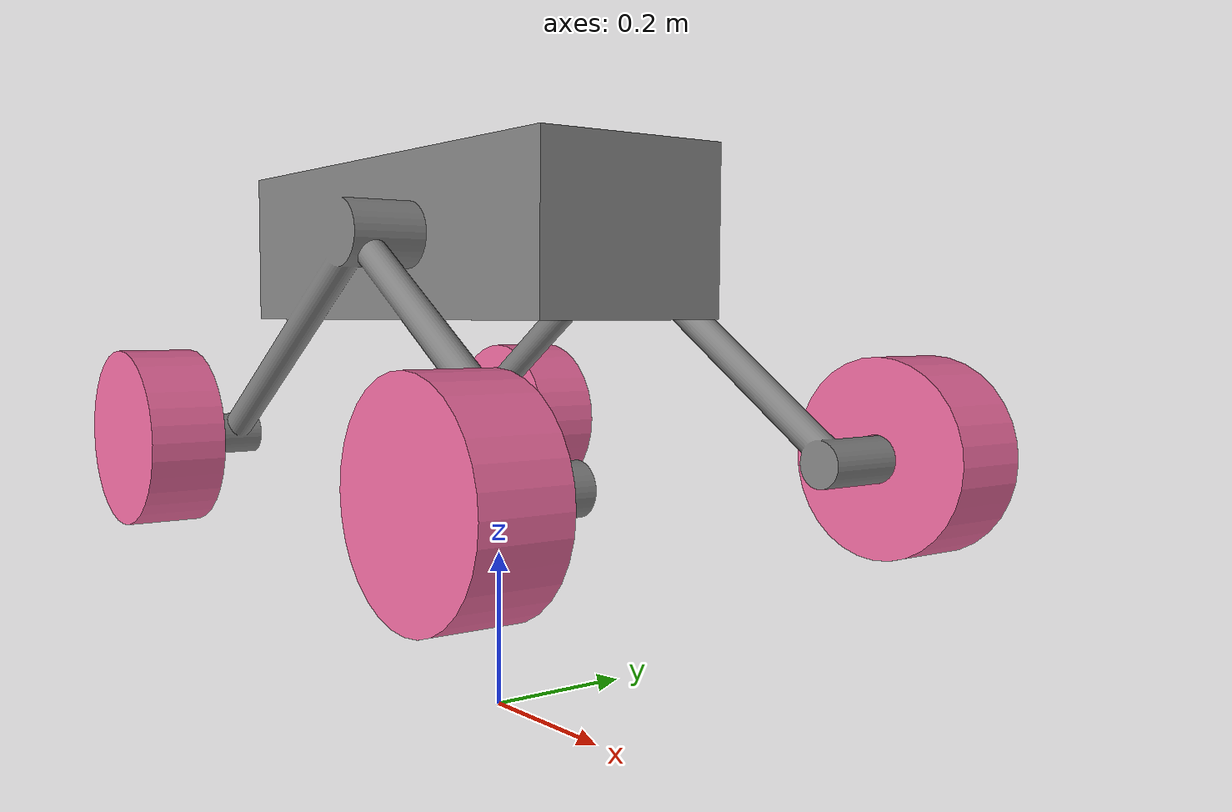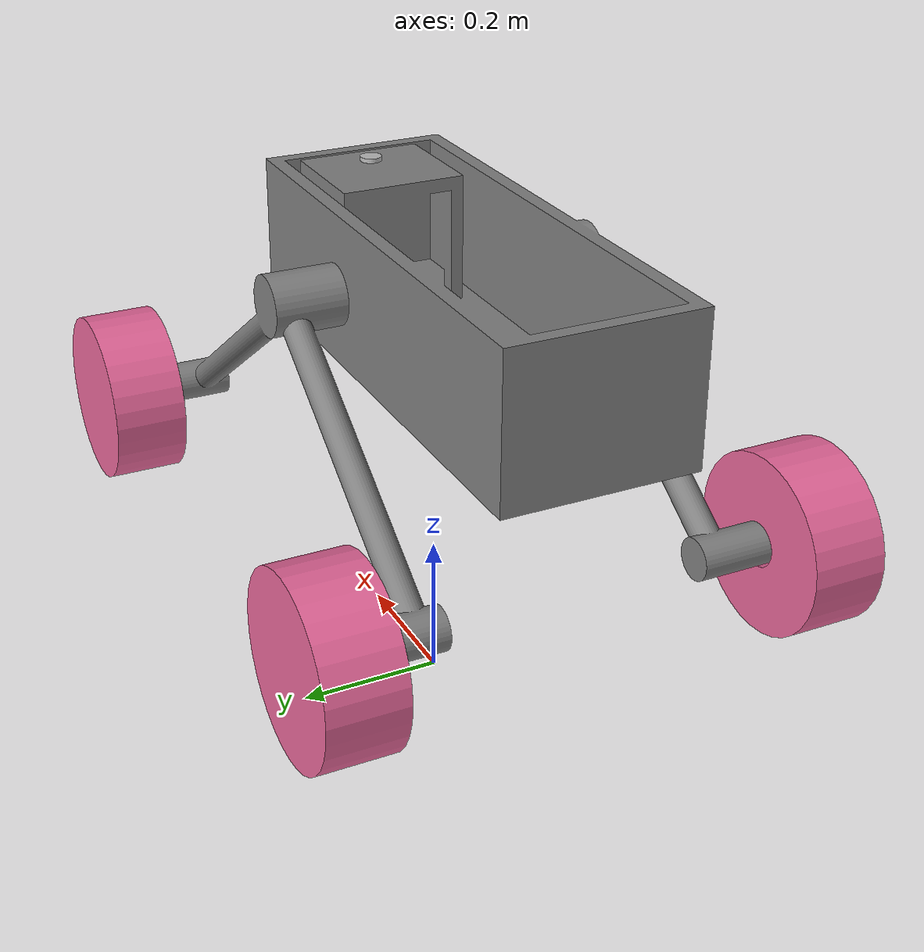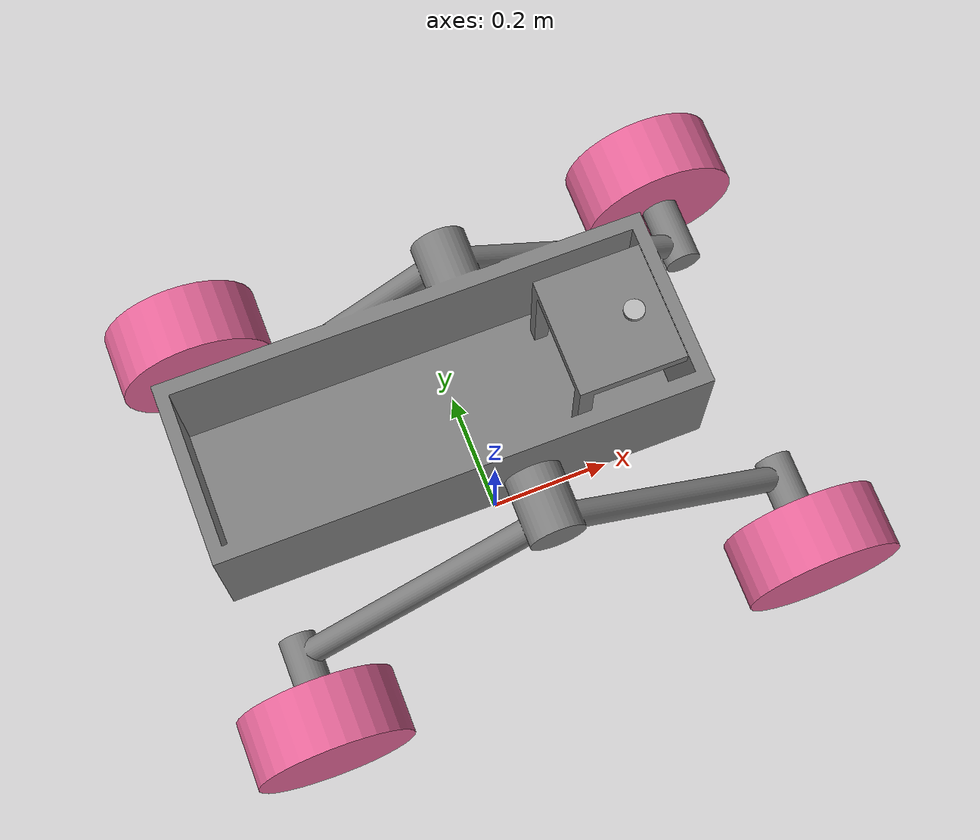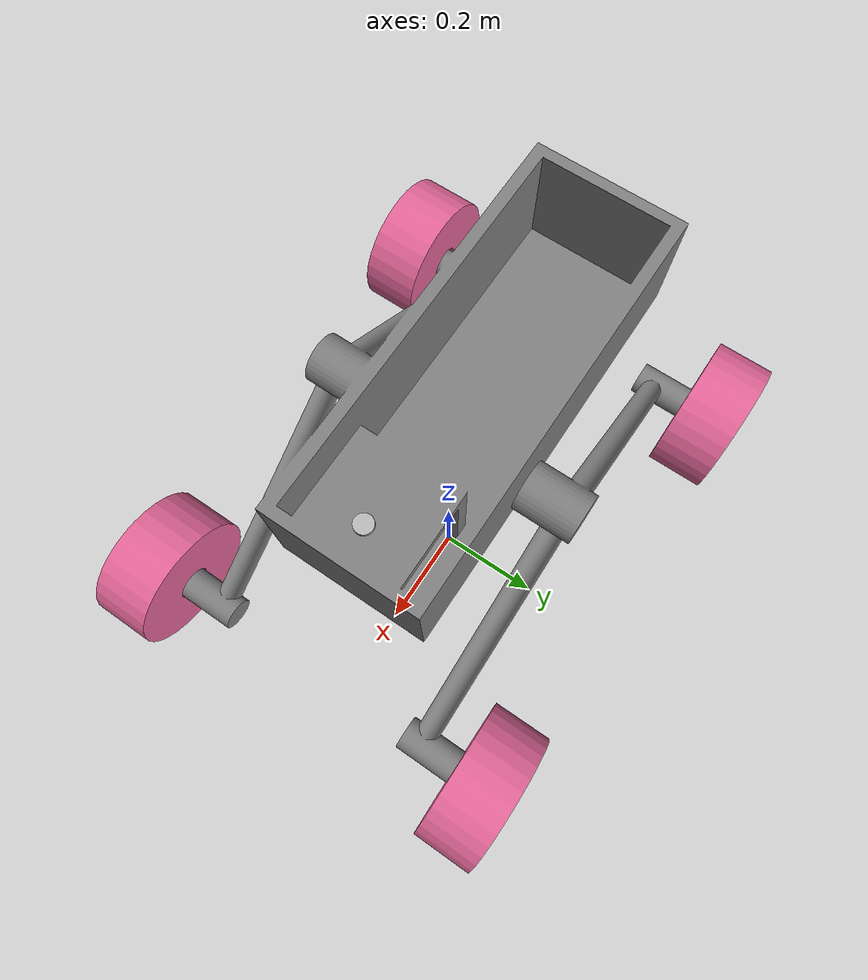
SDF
<sdf version='1.7'>
  <model name='rover'>
    <pose>0 0 0.5 0 0 0</pose>
    <link name='base_link'>
      <inertial>
        <pose>-0.200442 -0.000145 0.03343 0 -0 0</pose>
        <mass>28.7484</mass>
        <inertia>
          <ixx>0.0489809</ixx>
          <ixy>-5.84646e-06</ixy>
          <ixz>-0.00696749</ixz>
          <iyy>0.259969</iyy>
          <iyz>-2.53149e-06</iyz>
          <izz>0.268329</izz>
        </inertia>
      </inertial>
      <collision name='base_link_collision'>
        <pose>0 0 0 0 -0 0</pose>
        <geometry>
          <mesh>
            <scale>1 1 1</scale>
            <uri>meshes/base_link.stl</uri>
          </mesh>
        </geometry>
      </collision>
      <visual name='base_link_visual'>
        <pose>0 0 0 0 -0 0</pose>
        <geometry>
          <mesh>
            <scale>1 1 1</scale>
            <uri>meshes/base_link.stl</uri>
          </mesh>
        </geometry>
        <material>
          <ambient>0.2 0.2 0.2 1</ambient>
          <diffuse>0.5 0.5 0.5 1</diffuse>
          <specular>0.8 0.8 0.8 1</specular>
        </material>
      </visual>
      <visual name='base_link_fixed_joint_lump__lidar_visual_1'>
        <pose>0.2 0 0.20682 0 -0 0</pose>
        <geometry>
          <mesh>
            <scale>1 1 1</scale>
            <uri>meshes/lidar.stl</uri>
          </mesh>
        </geometry>
      </visual>
      <sensor name='laser' type='ray'>
        <visualize>1</visualize>
        <update_rate>10</update_rate>
        <ray>
          <scan>
            <horizontal>
              <samples>1024</samples>
              <resolution>1</resolution>
              <min_angle>-3.14159</min_angle>
              <max_angle>3.14159</max_angle>
            </horizontal>
          </scan>
          <range>
            <min>0.1</min>
            <max>2</max>
            <resolution>0.1</resolution>
          </range>
        </ray>
        <plugin name='gazebo_ros_laser' filename='libgazebo_ros_ray_sensor.so'>
          <ros>
            <namespace>/rover</namespace>
            <remapping>~/out:=scan</remapping>
          </ros>
          <output_type>sensor_msgs/LaserScan</output_type>
          <frame_name>base_link</frame_name>
        </plugin>
        <pose>0.2 0 0.20682 0 -0 0</pose>
      </sensor>
    </link>
    <joint name='left_back_joint' type='revolute'>
      <pose relative_to='base_link'>-0.38139 0.31387 -0.16074 0 -0 0</pose>
      <parent>base_link</parent>
      <child>left_back</child>
      <axis>
        <xyz>0 1 0</xyz>
        <limit>
          <lower>-1e+16</lower>
          <upper>1e+16</upper>
        </limit>
        <dynamics>
          <spring_reference>0</spring_reference>
          <spring_stiffness>0</spring_stiffness>
        </dynamics>
      </axis>
    </joint>
    <link name='left_back'>
      <pose relative_to='left_back_joint'>0 0 0 0 -0 0</pose>
      <inertial>
        <pose>5.3e-05 0.04643 -0.000245 0 -0 0</pose>
        <mass>1.80318</mass>
        <inertia>
          <ixx>0.00841984</ixx>
          <ixy>0</ixy>
          <ixz>0</ixz>
          <iyy>0.0141488</iyy>
          <iyz>0</iyz>
          <izz>0.00843426</izz>
        </inertia>
      </inertial>
      <collision name='left_back_collision'>
        <pose>0 0 0 0 -0 0</pose>
        <geometry>
          <mesh>
            <scale>1 1 1</scale>
            <uri>meshes/left_back.stl</uri>
          </mesh>
        </geometry>
        <surface>
          <friction>
            <ode>
              <mu>0.3</mu>     <!-- lateral friction -->
              <mu2>0.3</mu2>   <!-- longitudinal friction -->
            </ode>
          </friction>
        </surface>
      </collision>
      <visual name='left_back_visual'>
        <pose>0 0 0 0 -0 0</pose>
        <geometry>
          <mesh>
            <scale>1 1 1</scale>
            <uri>meshes/left_back.stl</uri>
          </mesh>
        </geometry>
        <material>
          <ambient>0.5 0.2 0.3 1</ambient>
          <diffuse>0.9 0.4 0.6 1</diffuse>
          <specular>0.2 0.2 0.2 1</specular>
        </material>
      </visual>
    </link>
    <joint name='left_front_joint' type='revolute'>
      <pose relative_to='base_link'>0.38106 0.31837 -0.16074 0 -0 0</pose>
      <parent>base_link</parent>
      <child>left_front</child>
      <axis>
        <xyz>0 1 0</xyz>
        <limit>
          <lower>-1e+16</lower>
          <upper>1e+16</upper>
        </limit>
        <dynamics>
          <spring_reference>0</spring_reference>
          <spring_stiffness>0</spring_stiffness>
        </dynamics>
      </axis>
    </joint>
    <link name='left_front'>
      <pose relative_to='left_front_joint'>0 0 0 0 -0 0</pose>
      <inertial>
        <pose>5.3e-05 0.04643 -0.000245 0 -0 0</pose>
        <mass>1.80318</mass>
        <inertia>
          <ixx>0.0084266</ixx>
          <ixy>0</ixy>
          <ixz>0</ixz>
          <iyy>0.0141488</iyy>
          <iyz>0</iyz>
          <izz>0.0084275</izz>
        </inertia>
      </inertial>
      <collision name='left_front_collision'>
        <pose>0 0 0 0 -0 0</pose>
        <geometry>
          <mesh>
            <scale>1 1 1</scale>
            <uri>meshes/left_front.stl</uri>
          </mesh>
        </geometry>
        <surface>
          <friction>
            <ode>
              <mu>0.3</mu>     <!-- lateral friction -->
              <mu2>0.3</mu2>   <!-- longitudinal friction -->
            </ode>
          </friction>
        </surface>
      </collision>
      <visual name='left_front_visual'>
        <pose>0 0 0 0 -0 0</pose>
        <geometry>
          <mesh>
            <scale>1 1 1</scale>
            <uri>meshes/left_front.stl</uri>
          </mesh>
        </geometry>
        <material>
          <ambient>0.5 0.2 0.3 1</ambient>
          <diffuse>0.9 0.4 0.6 1</diffuse>
          <specular>0.2 0.2 0.2 1</specular>
        </material>
      </visual>
    </link>
    <joint name='right_back_joint' type='revolute'>
      <pose relative_to='base_link'>-0.38139 -0.31387 -0.16074 0 -0 0</pose>
      <parent>base_link</parent>
      <child>right_back</child>
      <axis>
        <xyz>0 1 0</xyz>
        <limit>
          <lower>-1e+16</lower>
          <upper>1e+16</upper>
        </limit>
        <dynamics>
          <spring_reference>0</spring_reference>
          <spring_stiffness>0</spring_stiffness>
        </dynamics>
      </axis>
    </joint>
    <link name='right_back'>
      <pose relative_to='right_back_joint'>0 0 0 0 -0 0</pose>
      <inertial>
        <pose>-5.3e-05 -0.04643 -0.000245 0 -0 0</pose>
        <mass>1.80318</mass>
        <inertia>
          <ixx>0.00841984</ixx>
          <ixy>0</ixy>
          <ixz>0</ixz>
          <iyy>0.0141488</iyy>
          <iyz>0</iyz>
          <izz>0.00843426</izz>
        </inertia>
      </inertial>
      <collision name='right_back_collision'>
        <pose>0 0 0 0 -0 0</pose>
        <geometry>
          <mesh>
            <scale>1 1 1</scale>
            <uri>meshes/right_back.stl</uri>
          </mesh>
        </geometry>
        <surface>
          <friction>
            <ode>
              <mu>0.3</mu>     <!-- lateral friction -->
              <mu2>0.3</mu2>   <!-- longitudinal friction -->
            </ode>
          </friction>
        </surface>
      </collision>
      <visual name='right_back_visual'>
        <pose>0 0 0 0 -0 0</pose>
        <geometry>
          <mesh>
            <scale>1 1 1</scale>
            <uri>meshes/right_back.stl</uri>
          </mesh>
        </geometry>
        <material>
          <ambient>0.5 0.2 0.3 1</ambient>
          <diffuse>0.9 0.4 0.6 1</diffuse>
          <specular>0.2 0.2 0.2 1</specular>
        </material>
      </visual>
    </link>
    <joint name='right_front_joint' type='revolute'>
      <pose relative_to='base_link'>0.38106 -0.31837 -0.16074 0 -0 0</pose>
      <parent>base_link</parent>
      <child>right_front</child>
      <axis>
        <xyz>0 1 0</xyz>
        <limit>
          <lower>-1e+16</lower>
          <upper>1e+16</upper>
        </limit>
        <dynamics>
          <spring_reference>0</spring_reference>
          <spring_stiffness>0</spring_stiffness>
        </dynamics>
      </axis>
    </joint>
    <link name='right_front'>
      <pose relative_to='right_front_joint'>0 0 0 0 -0 0</pose>
      <inertial>
        <pose>-5.3e-05 -0.04643 -0.000245 0 -0 0</pose>
        <mass>1.80318</mass>
        <inertia>
          <ixx>0.00841975</ixx>
          <ixy>0</ixy>
          <ixz>0</ixz>
          <iyy>0.0141488</iyy>
          <iyz>0</iyz>
          <izz>0.00843434</izz>
        </inertia>
      </inertial>
      <collision name='right_front_collision'>
        <pose>0 0 0 0 -0 0</pose>
        <geometry>
          <mesh>
            <scale>1 1 1</scale>
            <uri>meshes/right_front.stl</uri>
          </mesh>
        </geometry>
        <surface>
          <friction>
            <ode>
              <mu>0.3</mu>     <!-- lateral friction -->
              <mu2>0.3</mu2>   <!-- longitudinal friction -->
            </ode>
          </friction>
        </surface>
      </collision>
      <visual name='right_front_visual'>
        <pose>0 0 0 0 -0 0</pose>
        <geometry>
          <mesh>
            <scale>1 1 1</scale>
            <uri>meshes/right_front.stl</uri>
          </mesh>
        </geometry>
        <material>
          <ambient>0.5 0.2 0.3 1</ambient>
          <diffuse>0.9 0.4 0.6 1</diffuse>
          <specular>0.2 0.2 0.2 1</specular>
        </material>
      </visual>
    </link>
    <plugin name='rover_joint_state_publisher' filename='libgazebo_ros_joint_state_publisher.so'>
      <ros>
        <namespace>/rover</namespace>
      </ros>
      <update_rate>50</update_rate>
      <joint_name>left_front_joint</joint_name>
      <joint_name>left_back_joint</joint_name>
      <joint_name>right_front_joint</joint_name>
      <joint_name>right_back_joint</joint_name>
    </plugin>
    <static>0</static>
    <plugin name='skid_steer_drive' filename='libgazebo_ros_diff_drive.so'>
      <ros>
        <namespace>/rover</namespace>
      </ros>
      <num_wheel_pairs>2</num_wheel_pairs>
      <update_rate>30</update_rate>
      <left_joint>left_front_joint</left_joint>
      <right_joint>right_front_joint</right_joint>
      <left_joint>left_back_joint</left_joint>
      <right_joint>right_back_joint</right_joint>
      <wheel_separation>0.76</wheel_separation>
      <wheel_separation>0.76</wheel_separation>
      <wheel_diameter>0.11</wheel_diameter>
      <wheel_diameter>0.11</wheel_diameter>
      <max_wheel_torque>20</max_wheel_torque>
      <max_wheel_acceleration>1.0</max_wheel_acceleration>
      <publish_odom>1</publish_odom>
      <publish_odom_tf>1</publish_odom_tf>
      <publish_wheel_tf>1</publish_wheel_tf>
      <odometry_frame>odom</odometry_frame>
      <robot_base_frame>base_link</robot_base_frame>
    </plugin>
  </model>
</sdf>
